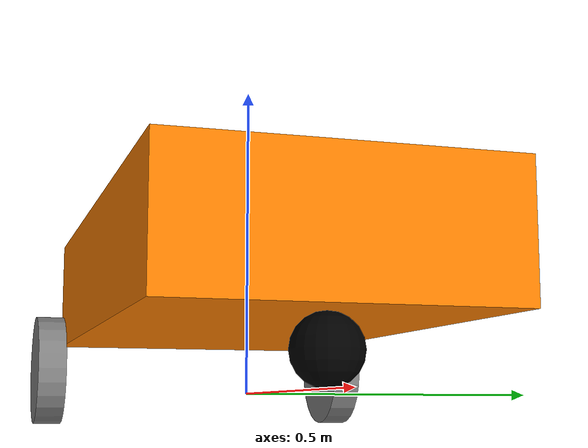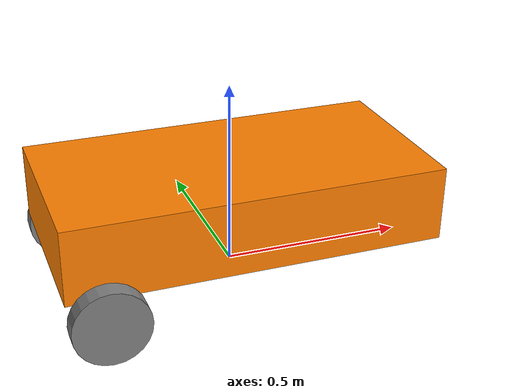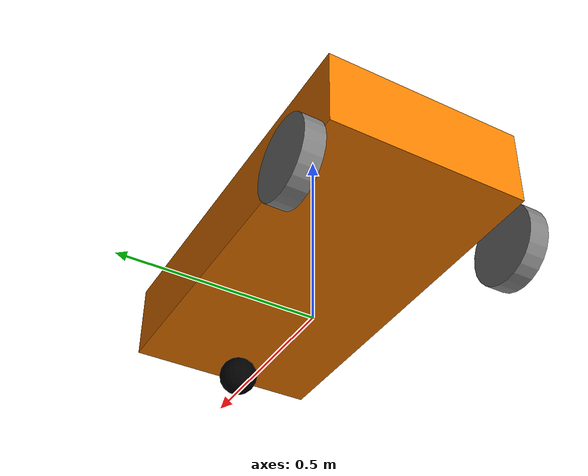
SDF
<?xml version="1.0" ?>
<sdf version="1.6">
  <model name="orange_car">
    <link name="base_link">
      <pose>0 0 0.2 0 0 0</pose>
      <collision name="base_collision">
        <geometry>
          <box>
            <size>1 0.5 0.2</size>
          </box>
        </geometry>
      </collision>
      <visual name="base_visual">
        <geometry>
          <box>
            <size>1 0.5 0.2</size>
          </box>
        </geometry>
        <material>
          <ambient>1.0 0.5 0.0 1.0</ambient>
          <diffuse>1.0 0.5 0.0 1.0</diffuse>
        </material>
      </visual>
    </link>

    <link name="left_wheel">
      <pose>-0.4 0.283 0.05 0 1.5708 1.5708</pose>
      <collision name="left_wheel_collision">
        <geometry>
          <cylinder>
            <radius>0.1</radius>
            <length>0.05</length>
          </cylinder>
        </geometry>
      </collision>
      <visual name="left_wheel_visual">
        <geometry>
          <cylinder>
            <radius>0.1</radius>
            <length>0.05</length>
          </cylinder>
        </geometry>
        <material>
          <ambient>0.5 0.5 0.5 1.0</ambient>
          <diffuse>0.5 0.5 0.5 1.0</diffuse>
        </material>
      </visual>
    </link>

    <link name="right_wheel">
      <pose>-0.4 -0.283 0.05 0 1.5708 1.5708</pose>
      <collision name="right_wheel_collision">
        <geometry>
          <cylinder>
            <radius>0.1</radius>
            <length>0.05</length>
          </cylinder>
        </geometry>
      </collision>
      <visual name="right_wheel_visual">
        <geometry>
          <cylinder>
            <radius>0.1</radius>
            <length>0.05</length>
          </cylinder>
        </geometry>
        <material>
          <ambient>0.5 0.5 0.5 1.0</ambient>
          <diffuse>0.5 0.5 0.5 1.0</diffuse>
        </material>
      </visual>
    </link>

    <link name="castor_wheel">
      <pose>0.4 0 0.05 0 0 0</pose>
      <collision name="castor_wheel_collision">
        <geometry>
          <sphere>
            <radius>0.05</radius>
          </sphere>
        </geometry>
      </collision>
      <visual name="castor_wheel_visual">
        <geometry>
          <sphere>
            <radius>0.05</radius>
          </sphere>
        </geometry>
        <material>
          <ambient>0.0 0.0 0.0 1.0</ambient>
          <diffuse>0.0 0.0 0.0 1.0</diffuse>
        </material>
      </visual>
    </link>

    <!-- Joints -->
    <joint name="left_wheel_joint" type="revolute">
      <parent>base_link</parent>
      <child>left_wheel</child>
      <pose>-0.4 0.3 0 0 0 0</pose>
      <axis>
        <xyz>0 1 0</xyz>
        <limit>
          <lower>-3.14159</lower>
          <upper>3.14159</upper>
        </limit>
        <dynamics>
          <damping>0.1</damping>
          <friction>0.1</friction>
        </dynamics>
      </axis>
    </joint>

    <joint name="right_wheel_joint" type="revolute">
      <parent>base_link</parent>
      <child>right_wheel</child>
      <pose>-0.4 -0.3 0 0 0 0</pose>
      <axis>
        <xyz>0 1 0</xyz>
        <limit>
          <lower>-3.14159</lower>
          <upper>3.14159</upper>
        </limit>
        <dynamics>
          <damping>0.1</damping>
          <friction>0.1</friction>
        </dynamics>
      </axis>
    </joint>

    <joint name="castor_wheel_joint" type="revolute2">
      <parent>base_link</parent>
      <child>castor_wheel</child>
      <pose>0.4 0 0 0 0 0</pose>
      <axis>
        <xyz>0 0 1</xyz>
        <limit>
          <lower>-3.14159</lower>
          <upper>3.14159</upper>
        </limit>
        <dynamics>
          <damping>0.1</damping>
          <friction>0.1</friction>
        </dynamics>
      </axis>
      <axis2>
        <xyz>1 0 0</xyz>
        <limit>
          <lower>-3.14159</lower>
          <upper>3.14159</upper>
        </limit>
        <dynamics>
          <damping>0.1</damping>
          <friction>0.1</friction>
        </dynamics>
      </axis2>
    </joint>
  </model>
</sdf>
